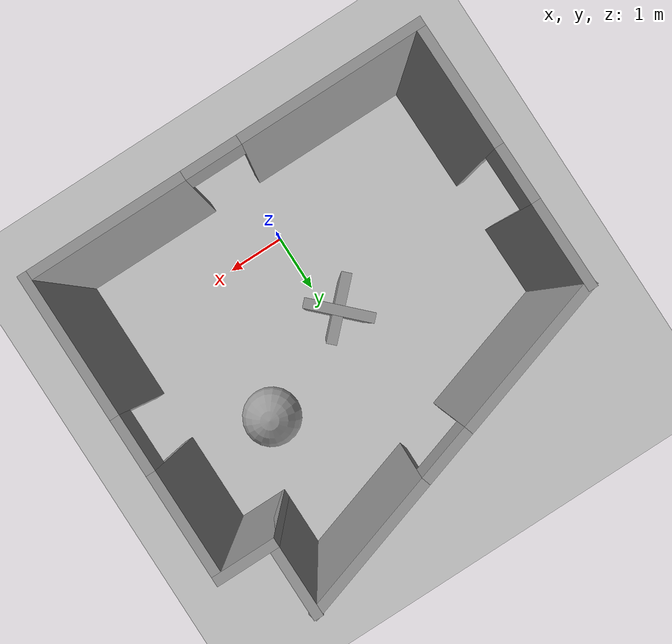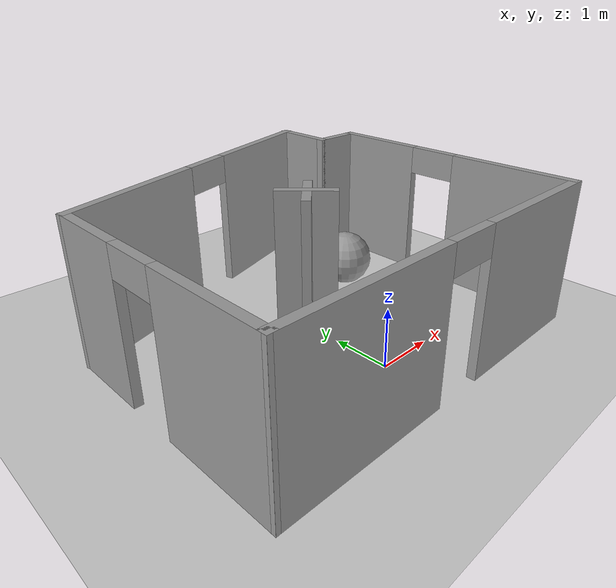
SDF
<sdf version="1.7">
 <world name="default">
  <light name="sun" type="directional">
   <pose>0 0 10 0 -0 0</pose>
   <diffuse>0.8 0.8 0.8 1</diffuse>
   <specular>0.2 0.2 0.2 1</specular>
   <attenuation>
    <range>1000</range>
    <constant>0.9</constant>
    <linear>0.01</linear>
    <quadratic>0.001</quadratic>
   </attenuation>
   <direction>-0.5 0.1 -0.9</direction>
   <spot><inner_angle>0</inner_angle><outer_angle>0</outer_angle><falloff>0</falloff></spot>
  </light>
  <model name="ground_plane">
   <static>1</static>
   <link name="link">
    <collision name="collision">
     <geometry><plane><normal>0 0 1</normal><size>100 100</size></plane></geometry>
     <surface>
      <contact><collide_bitmask>65535</collide_bitmask></contact>
      <friction><ode><mu>100</mu><mu2>50</mu2></ode></friction>
     </surface>
    </collision>
    <visual name="visual">
     <cast_shadows>0</cast_shadows>
     <geometry><plane><normal>0 0 1</normal><size>100 100</size></plane></geometry>
     <material>
      <script><uri>file://media/materials/scripts/gazebo.material</uri><name>Gazebo/Grey</name></script>
     </material>
    </visual>
   </link>
  </model>
  <gravity>0 0 -9.8</gravity>
  <magnetic_field>6e-06 2.3e-05 -4.2e-05</magnetic_field>
  <atmosphere type="adiabatic"/>
  <physics type="ode">
   <max_step_size>0.001</max_step_size>
   <real_time_factor>1</real_time_factor>
   <real_time_update_rate>1000</real_time_update_rate>
  </physics>
  <scene><ambient>0.4 0.4 0.4 1</ambient><background>0.7 0.7 0.7 1</background><shadows>1</shadows></scene>
  <spherical_coordinates>
   <surface_model>EARTH_WGS84</surface_model>
   <latitude_deg>0</latitude_deg>
   <longitude_deg>0</longitude_deg>
   <elevation>0</elevation>
   <heading_deg>0</heading_deg>
  </spherical_coordinates>
  <model name="m4">
   <pose>0.016073 1.89191 0 0 -0 0</pose>
   <link name="Wall_12">
    <collision name="Wall_12_Collision">
     <geometry><box><size>1 0.15 2.5</size></box></geometry>
     <pose>0 0 1.25 0 -0 0</pose>
    </collision>
    <visual name="Wall_12_Visual">
     <pose>0 0 1.25 0 -0 0</pose>
     <geometry><box><size>1 0.15 2.5</size></box></geometry>
     <material>
      <script><uri>file://media/materials/scripts/gazebo.material</uri><name>Gazebo/Grey</name></script>
      <ambient>1 1 1 1</ambient>
     </material>
     <meta><layer>0</layer></meta>
    </visual>
    <pose>-0.138946 -0.305724 0 0 -0 -0.785398</pose>
   </link>
   <link name="Wall_14">
    <collision name="Wall_14_Collision">
     <geometry><box><size>1 0.15 2.5</size></box></geometry>
     <pose>0 0 1.25 0 -0 0</pose>
    </collision>
    <visual name="Wall_14_Visual">
     <pose>0 0 1.25 0 -0 0</pose>
     <geometry><box><size>1 0.15 2.5</size></box></geometry>
     <material>
      <script><uri>file://media/materials/scripts/gazebo.material</uri><name>Gazebo/Grey</name></script>
      <ambient>1 1 1 1</ambient>
     </material>
     <meta><layer>0</layer></meta>
    </visual>
    <pose>-0.152389 -0.330728 0 0 -0 -2.35619</pose>
   </link>
   <link name="Wall_2">
    <collision name="Wall_2_Collision">
     <geometry><box><size>1 0.15 2.5</size></box></geometry>
     <pose>0 0 1.25 0 -0 0</pose>
    </collision>
    <visual name="Wall_2_Visual">
     <pose>0 0 1.25 0 -0 0</pose>
     <geometry><box><size>1 0.15 2.5</size></box></geometry>
     <material>
      <script><uri>file://media/materials/scripts/gazebo.material</uri><name>Gazebo/Grey</name></script>
      <ambient>1 1 1 1</ambient>
     </material>
     <meta><layer>0</layer></meta>
    </visual>
    <pose>2.77928 1.86591 0 0 -0 0</pose>
   </link>
   <link name="Wall_3">
    <pose>3.20428 -0.559089 0 0 -0 -1.5708</pose>
    <visual name="Wall_3_Visual_0">
     <pose>-1.60989 0 1.25 0 -0 0</pose>
     <geometry><box><size>1.78023 0.15 2.5</size></box></geometry>
     <material>
      <script><uri>file://media/materials/scripts/gazebo.material</uri><name>Gazebo/Grey</name></script>
      <ambient>1 1 1 1</ambient>
     </material>
     <meta><layer>0</layer></meta>
    </visual>
    <collision name="Wall_3_Collision_0">
     <geometry><box><size>1.78023 0.15 2.5</size></box></geometry>
     <pose>-1.60989 0 1.25 0 -0 0</pose>
    </collision>
    <visual name="Wall_3_Visual_1">
     <pose>1.34011 0 1.25 0 -0 0</pose>
     <geometry><box><size>2.31977 0.15 2.5</size></box></geometry>
     <material>
      <script><uri>file://media/materials/scripts/gazebo.material</uri><name>Gazebo/Grey</name></script>
      <ambient>1 1 1 1</ambient>
     </material>
     <meta><layer>0</layer></meta>
    </visual>
    <collision name="Wall_3_Collision_1">
     <geometry><box><size>2.31977 0.15 2.5</size></box></geometry>
     <pose>1.34011 0 1.25 0 -0 0</pose>
    </collision>
    <visual name="Wall_3_Visual_2">
     <pose>-0.26977 0 2.25 0 -0 0</pose>
     <geometry><box><size>0.9 0.15 0.5</size></box></geometry>
     <material>
      <script><uri>file://media/materials/scripts/gazebo.material</uri><name>Gazebo/Grey</name></script>
      <ambient>1 1 1 1</ambient>
     </material>
     <meta><layer>0</layer></meta>
    </visual>
    <collision name="Wall_3_Collision_2">
     <geometry><box><size>0.9 0.15 0.5</size></box></geometry>
     <pose>-0.26977 0 2.25 0 -0 0</pose>
    </collision>
   </link>
   <link name="Wall_4">
    <pose>0.029277 -2.98409 0 0 -0 3.14159</pose>
    <visual name="Wall_4_Visual_0">
     <pose>-1.93493 0 1.25 0 -0 0</pose>
     <geometry><box><size>2.63013 0.15 2.5</size></box></geometry>
     <material>
      <script><uri>file://media/materials/scripts/gazebo.material</uri><name>Gazebo/Grey</name></script>
      <ambient>1 1 1 1</ambient>
     </material>
     <meta><layer>0</layer></meta>
    </visual>
    <collision name="Wall_4_Collision_0">
     <geometry><box><size>2.63013 0.15 2.5</size></box></geometry>
     <pose>-1.93493 0 1.25 0 -0 0</pose>
    </collision>
    <visual name="Wall_4_Visual_1">
     <pose>1.76507 0 1.25 0 -0 0</pose>
     <geometry><box><size>2.96987 0.15 2.5</size></box></geometry>
     <material>
      <script><uri>file://media/materials/scripts/gazebo.material</uri><name>Gazebo/Grey</name></script>
      <ambient>1 1 1 1</ambient>
     </material>
     <meta><layer>0</layer></meta>
    </visual>
    <collision name="Wall_4_Collision_1">
     <geometry><box><size>2.96987 0.15 2.5</size></box></geometry>
     <pose>1.76507 0 1.25 0 -0 0</pose>
    </collision>
    <visual name="Wall_4_Visual_2">
     <pose>-0.169869 0 2.25 0 -0 0</pose>
     <geometry><box><size>0.9 0.15 0.5</size></box></geometry>
     <material>
      <script><uri>file://media/materials/scripts/gazebo.material</uri><name>Gazebo/Grey</name></script>
      <ambient>1 1 1 1</ambient>
     </material>
     <meta><layer>0</layer></meta>
    </visual>
    <collision name="Wall_4_Collision_2">
     <geometry><box><size>0.9 0.15 0.5</size></box></geometry>
     <pose>-0.169869 0 2.25 0 -0 0</pose>
    </collision>
   </link>
   <link name="Wall_5">
    <pose>-3.16556 -0.869877 0 0 -0 1.58018</pose>
    <visual name="Wall_5_Visual_0">
     <pose>-1.16042 0 1.25 0 -0 0</pose>
     <geometry><box><size>2.05776 0.15 2.5</size></box></geometry>
     <material>
      <script><uri>file://media/materials/scripts/gazebo.material</uri><name>Gazebo/Grey</name></script>
      <ambient>1 1 1 1</ambient>
     </material>
     <meta><layer>0</layer></meta>
    </visual>
    <collision name="Wall_5_Collision_0">
     <geometry><box><size>2.05776 0.15 2.5</size></box></geometry>
     <pose>-1.16042 0 1.25 0 -0 0</pose>
    </collision>
    <visual name="Wall_5_Visual_1">
     <pose>1.47888 0 1.25 0 -0 0</pose>
     <geometry><box><size>1.42085 0.15 2.5</size></box></geometry>
     <material>
      <script><uri>file://media/materials/scripts/gazebo.material</uri><name>Gazebo/Grey</name></script>
      <ambient>1 1 1 1</ambient>
     </material>
     <meta><layer>0</layer></meta>
    </visual>
    <collision name="Wall_5_Collision_1">
     <geometry><box><size>1.42085 0.15 2.5</size></box></geometry>
     <pose>1.47888 0 1.25 0 -0 0</pose>
    </collision>
    <visual name="Wall_5_Visual_2">
     <pose>0.318459 0 2.25 0 -0 0</pose>
     <geometry><box><size>0.9 0.15 0.5</size></box></geometry>
     <material>
      <script><uri>file://media/materials/scripts/gazebo.material</uri><name>Gazebo/Grey</name></script>
      <ambient>1 1 1 1</ambient>
     </material>
     <meta><layer>0</layer></meta>
    </visual>
    <collision name="Wall_5_Collision_2">
     <geometry><box><size>0.9 0.15 0.5</size></box></geometry>
     <pose>0.318459 0 2.25 0 -0 0</pose>
    </collision>
   </link>
   <link name="Wall_8">
    <collision name="Wall_8_Collision">
     <geometry><box><size>1.25 0.15 2.5</size></box></geometry>
     <pose>0 0 1.25 0 -0 0</pose>
    </collision>
    <visual name="Wall_8_Visual">
     <pose>0 0 1.25 0 -0 0</pose>
     <geometry><box><size>1.25 0.15 2.5</size></box></geometry>
     <material>
      <script><uri>file://media/materials/scripts/gazebo.material</uri><name>Gazebo/Grey</name></script>
      <ambient>1 1 1 1</ambient>
     </material>
     <meta><layer>0</layer></meta>
    </visual>
    <pose>2.35428 2.41591 0 0 -0 1.5708</pose>
   </link>
   <link name="Wall_9">
    <pose>-0.41556 2.10512 0 0 -0 -2.84028</pose>
    <visual name="Wall_9_Visual_0">
     <pose>-1.77528 0 1.25 0 -0 0</pose>
     <geometry><box><size>2.40046 0.15 2.5</size></box></geometry>
     <material>
      <script><uri>file://media/materials/scripts/gazebo.material</uri><name>Gazebo/Grey</name></script>
      <ambient>1 1 1 1</ambient>
     </material>
     <meta><layer>0</layer></meta>
    </visual>
    <collision name="Wall_9_Collision_0">
     <geometry><box><size>2.40046 0.15 2.5</size></box></geometry>
     <pose>-1.77528 0 1.25 0 -0 0</pose>
    </collision>
    <visual name="Wall_9_Visual_1">
     <pose>1.65023 0 1.25 0 -0 0</pose>
     <geometry><box><size>2.65056 0.15 2.5</size></box></geometry>
     <material>
      <script><uri>file://media/materials/scripts/gazebo.material</uri><name>Gazebo/Grey</name></script>
      <ambient>1 1 1 1</ambient>
     </material>
     <meta><layer>0</layer></meta>
    </visual>
    <collision name="Wall_9_Collision_1">
     <geometry><box><size>2.65056 0.15 2.5</size></box></geometry>
     <pose>1.65023 0 1.25 0 -0 0</pose>
    </collision>
    <visual name="Wall_9_Visual_2">
     <pose>-0.125047 0 2.25 0 -0 0</pose>
     <geometry><box><size>0.9 0.15 0.5</size></box></geometry>
     <material>
      <script><uri>file://media/materials/scripts/gazebo.material</uri><name>Gazebo/Grey</name></script>
      <ambient>1 1 1 1</ambient>
     </material>
     <meta><layer>0</layer></meta>
    </visual>
    <collision name="Wall_9_Collision_2">
     <geometry><box><size>0.9 0.15 0.5</size></box></geometry>
     <pose>-0.125047 0 2.25 0 -0 0</pose>
    </collision>
   </link>
   <static>1</static>
  </model>
  <model name="unit_sphere">
   <pose>1.71592 2.46558 0.5 0 -0 0</pose>
   <link name="link">
    <inertial>
     <mass>1</mass>
     <inertia><ixx>0.1</ixx><ixy>0</ixy><ixz>0</ixz><iyy>0.1</iyy><iyz>0</iyz><izz>0.1</izz></inertia>
    </inertial>
    <collision name="collision"><geometry><sphere><radius>0.5</radius></sphere></geometry></collision>
    <visual name="visual">
     <geometry><sphere><radius>0.5</radius></sphere></geometry>
     <material>
      <script><name>Gazebo/Grey</name><uri>file://media/materials/scripts/gazebo.material</uri></script>
     </material>
    </visual>
   </link>
  </model>
 </world>
</sdf>
